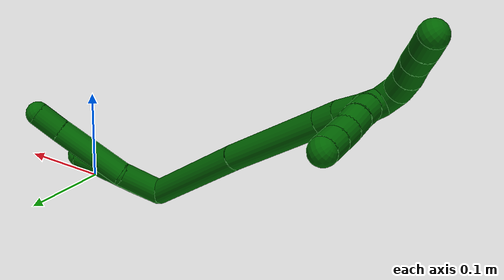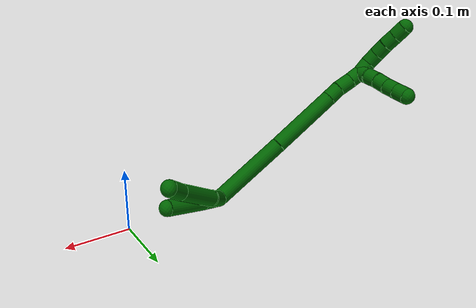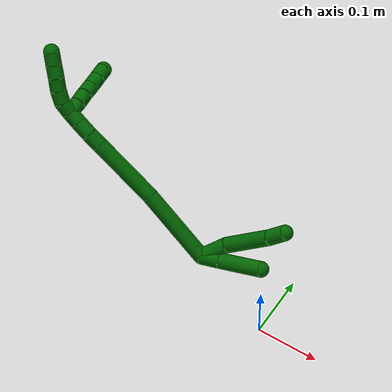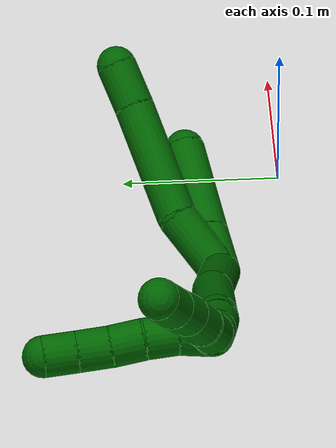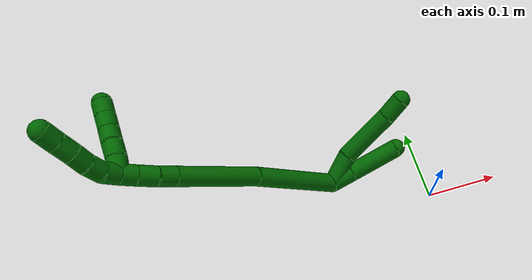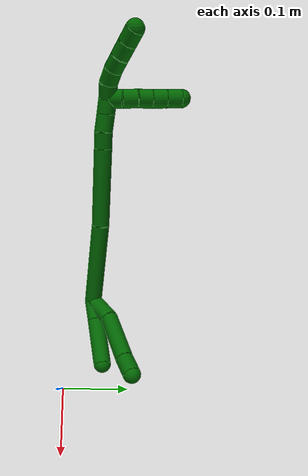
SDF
<sdf version="1.7">
 <world name="default">
  <model name="6">
   <static>0</static>
   <link name="6">
    <collision name="collision-cylinder-e_1_2_8">
     <pose>0.013104 0.017549 -0.003559 -1.77091 0.631764 -0.760616</pose>
     <geometry><cylinder><radius>0.0125</radius><length>0.044377</length></cylinder></geometry>
     <surface>
      <friction><ode><mu>1.16</mu><mu2>1.16</mu2><slip1>0</slip1><slip2>0</slip2></ode></friction>
      <contact><ode><kp>1e+06</kp><kd>1</kd><max_vel>0</max_vel><min_depth>0.001</min_depth></ode></contact>
     </surface>
    </collision>
    <visual name="visual-cylinder-e_1_2_8">
     <pose>0.013104 0.017549 -0.003559 -1.77091 0.631764 -0.760616</pose>
     <geometry><cylinder><radius>0.0125</radius><length>0.044377</length></cylinder></geometry>
     <material><ambient>0 0.392157 0.003922 1</ambient></material>
    </visual>
    <collision name="collision-cylinder-e_2_8_9">
     <pose>0.056456 0.056657 -0.015764 -1.95217 0.915916 -1.25948</pose>
     <geometry><cylinder><radius>0.0125</radius><length>0.076277</length></cylinder></geometry>
     <surface>
      <friction><ode><mu>1.16</mu><mu2>1.16</mu2><slip1>0</slip1><slip2>0</slip2></ode></friction>
      <contact><ode><kp>1e+06</kp><kd>1</kd><max_vel>0</max_vel><min_depth>0.001</min_depth></ode></contact>
     </surface>
    </collision>
    <visual name="visual-cylinder-e_2_8_9">
     <pose>0.056456 0.056657 -0.015764 -1.95217 0.915916 -1.25948</pose>
     <geometry><cylinder><radius>0.0125</radius><length>0.076277</length></cylinder></geometry>
     <material><ambient>0 0.392157 0.003922 1</ambient></material>
    </visual>
    <collision name="collision-cylinder-e_3_9_6">
     <pose>0.098122 0.087178 -0.026563 -1.80659 0.891712 -1.09021</pose>
     <geometry><cylinder><radius>0.0125</radius><length>0.029346</length></cylinder></geometry>
     <surface>
      <friction><ode><mu>1.16</mu><mu2>1.16</mu2><slip1>0</slip1><slip2>0</slip2></ode></friction>
      <contact><ode><kp>1e+06</kp><kd>1</kd><max_vel>0</max_vel><min_depth>0.001</min_depth></ode></contact>
     </surface>
    </collision>
    <visual name="visual-cylinder-e_3_9_6">
     <pose>0.098122 0.087178 -0.026563 -1.80659 0.891712 -1.09021</pose>
     <geometry><cylinder><radius>0.0125</radius><length>0.029346</length></cylinder></geometry>
     <material><ambient>0 0.392157 0.003922 1</ambient></material>
    </visual>
    <collision name="collision-cylinder-e_1_2_10">
     <pose>0.011396 0.005992 -0.009108 -2.55972 0.807518 -1.91897</pose>
     <geometry><cylinder><radius>0.0125</radius><length>0.031542</length></cylinder></geometry>
     <surface>
      <friction><ode><mu>1.16</mu><mu2>1.16</mu2><slip1>0</slip1><slip2>0</slip2></ode></friction>
      <contact><ode><kp>1e+06</kp><kd>1</kd><max_vel>0</max_vel><min_depth>0.001</min_depth></ode></contact>
     </surface>
    </collision>
    <visual name="visual-cylinder-e_1_2_10">
     <pose>0.011396 0.005992 -0.009108 -2.55972 0.807518 -1.91897</pose>
     <geometry><cylinder><radius>0.0125</radius><length>0.031542</length></cylinder></geometry>
     <material><ambient>0 0.392157 0.003922 1</ambient></material>
    </visual>
    <collision name="collision-cylinder-e_2_10_5">
     <pose>0.048347 0.025124 -0.036815 -2.5265 0.842926 -1.90882</pose>
     <geometry><cylinder><radius>0.0125</radius><length>0.068458</length></cylinder></geometry>
     <surface>
      <friction><ode><mu>1.16</mu><mu2>1.16</mu2><slip1>0</slip1><slip2>0</slip2></ode></friction>
      <contact><ode><kp>1e+06</kp><kd>1</kd><max_vel>0</max_vel><min_depth>0.001</min_depth></ode></contact>
     </surface>
    </collision>
    <visual name="visual-cylinder-e_2_10_5">
     <pose>0.048347 0.025124 -0.036815 -2.5265 0.842926 -1.90882</pose>
     <geometry><cylinder><radius>0.0125</radius><length>0.068458</length></cylinder></geometry>
     <material><ambient>0 0.392157 0.003922 1</ambient></material>
    </visual>
    <collision name="collision-cylinder-e_1_2_11">
     <pose>-0.011601 0.005778 0.060497 -0.095222 -0.188631 0.009014</pose>
     <geometry><cylinder><radius>0.0125</radius><length>0.12374</length></cylinder></geometry>
     <surface>
      <friction><ode><mu>1.16</mu><mu2>1.16</mu2><slip1>0</slip1><slip2>0</slip2></ode></friction>
      <contact><ode><kp>1e+06</kp><kd>1</kd><max_vel>0</max_vel><min_depth>0.001</min_depth></ode></contact>
     </surface>
    </collision>
    <visual name="visual-cylinder-e_1_2_11">
     <pose>-0.011601 0.005778 0.060497 -0.095222 -0.188631 0.009014</pose>
     <geometry><cylinder><radius>0.0125</radius><length>0.12374</length></cylinder></geometry>
     <material><ambient>0 0.392157 0.003922 1</ambient></material>
    </visual>
    <collision name="collision-cylinder-e_2_11_12">
     <pose>-0.034532 0.012854 0.174828 -0.024104 -0.207367 0.002508</pose>
     <geometry><cylinder><radius>0.0125</radius><length>0.110057</length></cylinder></geometry>
     <surface>
      <friction><ode><mu>1.16</mu><mu2>1.16</mu2><slip1>0</slip1><slip2>0</slip2></ode></friction>
      <contact><ode><kp>1e+06</kp><kd>1</kd><max_vel>0</max_vel><min_depth>0.001</min_depth></ode></contact>
     </surface>
    </collision>
    <visual name="visual-cylinder-e_2_11_12">
     <pose>-0.034532 0.012854 0.174828 -0.024104 -0.207367 0.002508</pose>
     <geometry><cylinder><radius>0.0125</radius><length>0.110057</length></cylinder></geometry>
     <material><ambient>0 0.392157 0.003922 1</ambient></material>
    </visual>
    <collision name="collision-cylinder-e_3_12_13">
     <pose>-0.048047 0.014369 0.239556 -0.019905 -0.19793 0.001976</pose>
     <geometry><cylinder><radius>0.0125</radius><length>0.022228</length></cylinder></geometry>
     <surface>
      <friction><ode><mu>1.16</mu><mu2>1.16</mu2><slip1>0</slip1><slip2>0</slip2></ode></friction>
      <contact><ode><kp>1e+06</kp><kd>1</kd><max_vel>0</max_vel><min_depth>0.001</min_depth></ode></contact>
     </surface>
    </collision>
    <visual name="visual-cylinder-e_3_12_13">
     <pose>-0.048047 0.014369 0.239556 -0.019905 -0.19793 0.001976</pose>
     <geometry><cylinder><radius>0.0125</radius><length>0.022228</length></cylinder></geometry>
     <material><ambient>0 0.392157 0.003922 1</ambient></material>
    </visual>
    <collision name="collision-cylinder-e_4_13_14">
     <pose>-0.054085 0.015618 0.261729 -0.091251 -0.327852 0.015104</pose>
     <geometry><cylinder><radius>0.0125</radius><length>0.023924</length></cylinder></geometry>
     <surface>
      <friction><ode><mu>1.16</mu><mu2>1.16</mu2><slip1>0</slip1><slip2>0</slip2></ode></friction>
      <contact><ode><kp>1e+06</kp><kd>1</kd><max_vel>0</max_vel><min_depth>0.001</min_depth></ode></contact>
     </surface>
    </collision>
    <visual name="visual-cylinder-e_4_13_14">
     <pose>-0.054085 0.015618 0.261729 -0.091251 -0.327852 0.015104</pose>
     <geometry><cylinder><radius>0.0125</radius><length>0.023924</length></cylinder></geometry>
     <material><ambient>0 0.392157 0.003922 1</ambient></material>
    </visual>
    <collision name="collision-cylinder-e_5_14_1">
     <pose>-0.060628 0.017642 0.282613 -0.102909 -0.271804 0.014085</pose>
     <geometry><cylinder><radius>0.0125</radius><length>0.020052</length></cylinder></geometry>
     <surface>
      <friction><ode><mu>1.16</mu><mu2>1.16</mu2><slip1>0</slip1><slip2>0</slip2></ode></friction>
      <contact><ode><kp>1e+06</kp><kd>1</kd><max_vel>0</max_vel><min_depth>0.001</min_depth></ode></contact>
     </surface>
    </collision>
    <visual name="visual-cylinder-e_5_14_1">
     <pose>-0.060628 0.017642 0.282613 -0.102909 -0.271804 0.014085</pose>
     <geometry><cylinder><radius>0.0125</radius><length>0.020052</length></cylinder></geometry>
     <material><ambient>0 0.392157 0.003922 1</ambient></material>
    </visual>
    <collision name="collision-cylinder-e_1_1_15">
     <pose>-0.063502 0.019624 0.302169 -0.099164 -0.018196 0.000903</pose>
     <geometry><cylinder><radius>0.0125</radius><length>0.02</length></cylinder></geometry>
     <surface>
      <friction><ode><mu>1.16</mu><mu2>1.16</mu2><slip1>0</slip1><slip2>0</slip2></ode></friction>
      <contact><ode><kp>1e+06</kp><kd>1</kd><max_vel>0</max_vel><min_depth>0.001</min_depth></ode></contact>
     </surface>
    </collision>
    <visual name="visual-cylinder-e_1_1_15">
     <pose>-0.063502 0.019624 0.302169 -0.099164 -0.018196 0.000903</pose>
     <geometry><cylinder><radius>0.0125</radius><length>0.02</length></cylinder></geometry>
     <material><ambient>0 0.392157 0.003922 1</ambient></material>
    </visual>
    <collision name="collision-cylinder-e_2_15_16">
     <pose>-0.063196 0.024739 0.321215 -0.425734 0.048766 -0.010542</pose>
     <geometry><cylinder><radius>0.0125</radius><length>0.02</length></cylinder></geometry>
     <surface>
      <friction><ode><mu>1.16</mu><mu2>1.16</mu2><slip1>0</slip1><slip2>0</slip2></ode></friction>
      <contact><ode><kp>1e+06</kp><kd>1</kd><max_vel>0</max_vel><min_depth>0.001</min_depth></ode></contact>
     </surface>
    </collision>
    <visual name="visual-cylinder-e_2_15_16">
     <pose>-0.063196 0.024739 0.321215 -0.425734 0.048766 -0.010542</pose>
     <geometry><cylinder><radius>0.0125</radius><length>0.02</length></cylinder></geometry>
     <material><ambient>0 0.392157 0.003922 1</ambient></material>
    </visual>
    <collision name="collision-cylinder-e_3_16_17">
     <pose>-0.061683 0.034246 0.338677 -0.571786 0.102751 -0.030227</pose>
     <geometry><cylinder><radius>0.0125</radius><length>0.02</length></cylinder></geometry>
     <surface>
      <friction><ode><mu>1.16</mu><mu2>1.16</mu2><slip1>0</slip1><slip2>0</slip2></ode></friction>
      <contact><ode><kp>1e+06</kp><kd>1</kd><max_vel>0</max_vel><min_depth>0.001</min_depth></ode></contact>
     </surface>
    </collision>
    <visual name="visual-cylinder-e_3_16_17">
     <pose>-0.061683 0.034246 0.338677 -0.571786 0.102751 -0.030227</pose>
     <geometry><cylinder><radius>0.0125</radius><length>0.02</length></cylinder></geometry>
     <material><ambient>0 0.392157 0.003922 1</ambient></material>
    </visual>
    <collision name="collision-cylinder-e_4_17_18">
     <pose>-0.060515 0.044984 0.355486 -0.565184 0.014279 -0.004146</pose>
     <geometry><cylinder><radius>0.0125</radius><length>0.02</length></cylinder></geometry>
     <surface>
      <friction><ode><mu>1.16</mu><mu2>1.16</mu2><slip1>0</slip1><slip2>0</slip2></ode></friction>
      <contact><ode><kp>1e+06</kp><kd>1</kd><max_vel>0</max_vel><min_depth>0.001</min_depth></ode></contact>
     </surface>
    </collision>
    <visual name="visual-cylinder-e_4_17_18">
     <pose>-0.060515 0.044984 0.355486 -0.565184 0.014279 -0.004146</pose>
     <geometry><cylinder><radius>0.0125</radius><length>0.02</length></cylinder></geometry>
     <material><ambient>0 0.392157 0.003922 1</ambient></material>
    </visual>
    <collision name="collision-cylinder-e_5_18_4">
     <pose>-0.059796 0.055756 0.372316 -0.573469 0.057583 -0.016983</pose>
     <geometry><cylinder><radius>0.0125</radius><length>0.02</length></cylinder></geometry>
     <surface>
      <friction><ode><mu>1.16</mu><mu2>1.16</mu2><slip1>0</slip1><slip2>0</slip2></ode></friction>
      <contact><ode><kp>1e+06</kp><kd>1</kd><max_vel>0</max_vel><min_depth>0.001</min_depth></ode></contact>
     </surface>
    </collision>
    <visual name="visual-cylinder-e_5_18_4">
     <pose>-0.059796 0.055756 0.372316 -0.573469 0.057583 -0.016983</pose>
     <geometry><cylinder><radius>0.0125</radius><length>0.02</length></cylinder></geometry>
     <material><ambient>0 0.392157 0.003922 1</ambient></material>
    </visual>
    <collision name="collision-cylinder-e_1_1_19">
     <pose>-0.065701 0.028329 0.291634 -1.63122 -0.240384 0.255207</pose>
     <geometry><cylinder><radius>0.0125</radius><length>0.02</length></cylinder></geometry>
     <surface>
      <friction><ode><mu>1.16</mu><mu2>1.16</mu2><slip1>0</slip1><slip2>0</slip2></ode></friction>
      <contact><ode><kp>1e+06</kp><kd>1</kd><max_vel>0</max_vel><min_depth>0.001</min_depth></ode></contact>
     </surface>
    </collision>
    <visual name="visual-cylinder-e_1_1_19">
     <pose>-0.065701 0.028329 0.291634 -1.63122 -0.240384 0.255207</pose>
     <geometry><cylinder><radius>0.0125</radius><length>0.02</length></cylinder></geometry>
     <material><ambient>0 0.392157 0.003922 1</ambient></material>
    </visual>
    <collision name="collision-cylinder-e_2_19_20">
     <pose>-0.072197 0.047127 0.290623 -1.61734 -0.424172 0.443745</pose>
     <geometry><cylinder><radius>0.0125</radius><length>0.02</length></cylinder></geometry>
     <surface>
      <friction><ode><mu>1.16</mu><mu2>1.16</mu2><slip1>0</slip1><slip2>0</slip2></ode></friction>
      <contact><ode><kp>1e+06</kp><kd>1</kd><max_vel>0</max_vel><min_depth>0.001</min_depth></ode></contact>
     </surface>
    </collision>
    <visual name="visual-cylinder-e_2_19_20">
     <pose>-0.072197 0.047127 0.290623 -1.61734 -0.424172 0.443745</pose>
     <geometry><cylinder><radius>0.0125</radius><length>0.02</length></cylinder></geometry>
     <material><ambient>0 0.392157 0.003922 1</ambient></material>
    </visual>
    <collision name="collision-cylinder-e_3_20_21">
     <pose>-0.081055 0.064955 0.289016 -1.70557 -0.494136 0.562172</pose>
     <geometry><cylinder><radius>0.0125</radius><length>0.02</length></cylinder></geometry>
     <surface>
      <friction><ode><mu>1.16</mu><mu2>1.16</mu2><slip1>0</slip1><slip2>0</slip2></ode></friction>
      <contact><ode><kp>1e+06</kp><kd>1</kd><max_vel>0</max_vel><min_depth>0.001</min_depth></ode></contact>
     </surface>
    </collision>
    <visual name="visual-cylinder-e_3_20_21">
     <pose>-0.081055 0.064955 0.289016 -1.70557 -0.494136 0.562172</pose>
     <geometry><cylinder><radius>0.0125</radius><length>0.02</length></cylinder></geometry>
     <material><ambient>0 0.392157 0.003922 1</ambient></material>
    </visual>
    <collision name="collision-cylinder-e_4_21_22">
     <pose>-0.089948 0.082756 0.287201 -1.64032 -0.42791 0.457712</pose>
     <geometry><cylinder><radius>0.0125</radius><length>0.02</length></cylinder></geometry>
     <surface>
      <friction><ode><mu>1.16</mu><mu2>1.16</mu2><slip1>0</slip1><slip2>0</slip2></ode></friction>
      <contact><ode><kp>1e+06</kp><kd>1</kd><max_vel>0</max_vel><min_depth>0.001</min_depth></ode></contact>
     </surface>
    </collision>
    <visual name="visual-cylinder-e_4_21_22">
     <pose>-0.089948 0.082756 0.287201 -1.64032 -0.42791 0.457712</pose>
     <geometry><cylinder><radius>0.0125</radius><length>0.02</length></cylinder></geometry>
     <material><ambient>0 0.392157 0.003922 1</ambient></material>
    </visual>
    <collision name="collision-cylinder-e_5_22_3">
     <pose>-0.098168 0.100946 0.28597 -1.63651 -0.419222 0.446806</pose>
     <geometry><cylinder><radius>0.0125</radius><length>0.02</length></cylinder></geometry>
     <surface>
      <friction><ode><mu>1.16</mu><mu2>1.16</mu2><slip1>0</slip1><slip2>0</slip2></ode></friction>
      <contact><ode><kp>1e+06</kp><kd>1</kd><max_vel>0</max_vel><min_depth>0.001</min_depth></ode></contact>
     </surface>
    </collision>
    <visual name="visual-cylinder-e_5_22_3">
     <pose>-0.098168 0.100946 0.28597 -1.63651 -0.419222 0.446806</pose>
     <geometry><cylinder><radius>0.0125</radius><length>0.02</length></cylinder></geometry>
     <material><ambient>0 0.392157 0.003922 1</ambient></material>
    </visual>
    <collision name="collision-sphere-3">
     <pose>-0.102239 0.110061 0.28537 0 -0 0</pose>
     <geometry><sphere><radius>0.0125</radius></sphere></geometry>
     <surface>
      <friction><ode><mu>1.16</mu><mu2>1.16</mu2><slip1>0</slip1><slip2>0</slip2></ode></friction>
      <contact><ode><kp>1e+06</kp><kd>1</kd><max_vel>0</max_vel><min_depth>0.001</min_depth></ode></contact>
     </surface>
    </collision>
    <visual name="visual-sphere-3">
     <pose>-0.102239 0.110061 0.28537 0 -0 0</pose>
     <geometry><sphere><radius>0.0125</radius></sphere></geometry>
     <material><ambient>0 0.392157 0.003922 1</ambient></material>
    </visual>
    <collision name="collision-sphere-22">
     <pose>-0.094098 0.091832 0.286569 0 -0 0</pose>
     <geometry><sphere><radius>0.0125</radius></sphere></geometry>
     <surface>
      <friction><ode><mu>1.16</mu><mu2>1.16</mu2><slip1>0</slip1><slip2>0</slip2></ode></friction>
      <contact><ode><kp>1e+06</kp><kd>1</kd><max_vel>0</max_vel><min_depth>0.001</min_depth></ode></contact>
     </surface>
    </collision>
    <visual name="visual-sphere-22">
     <pose>-0.094098 0.091832 0.286569 0 -0 0</pose>
     <geometry><sphere><radius>0.0125</radius></sphere></geometry>
     <material><ambient>0 0.392157 0.003922 1</ambient></material>
    </visual>
    <collision name="collision-sphere-21">
     <pose>-0.085798 0.073679 0.287833 0 -0 0</pose>
     <geometry><sphere><radius>0.0125</radius></sphere></geometry>
     <surface>
      <friction><ode><mu>1.16</mu><mu2>1.16</mu2><slip1>0</slip1><slip2>0</slip2></ode></friction>
      <contact><ode><kp>1e+06</kp><kd>1</kd><max_vel>0</max_vel><min_depth>0.001</min_depth></ode></contact>
     </surface>
    </collision>
    <visual name="visual-sphere-21">
     <pose>-0.085798 0.073679 0.287833 0 -0 0</pose>
     <geometry><sphere><radius>0.0125</radius></sphere></geometry>
     <material><ambient>0 0.392157 0.003922 1</ambient></material>
    </visual>
    <collision name="collision-sphere-20">
     <pose>-0.076313 0.056231 0.290199 0 -0 0</pose>
     <geometry><sphere><radius>0.0125</radius></sphere></geometry>
     <surface>
      <friction><ode><mu>1.16</mu><mu2>1.16</mu2><slip1>0</slip1><slip2>0</slip2></ode></friction>
      <contact><ode><kp>1e+06</kp><kd>1</kd><max_vel>0</max_vel><min_depth>0.001</min_depth></ode></contact>
     </surface>
    </collision>
    <visual name="visual-sphere-20">
     <pose>-0.076313 0.056231 0.290199 0 -0 0</pose>
     <geometry><sphere><radius>0.0125</radius></sphere></geometry>
     <material><ambient>0 0.392157 0.003922 1</ambient></material>
    </visual>
    <collision name="collision-sphere-19">
     <pose>-0.068081 0.038024 0.291047 0 -0 0</pose>
     <geometry><sphere><radius>0.0125</radius></sphere></geometry>
     <surface>
      <friction><ode><mu>1.16</mu><mu2>1.16</mu2><slip1>0</slip1><slip2>0</slip2></ode></friction>
      <contact><ode><kp>1e+06</kp><kd>1</kd><max_vel>0</max_vel><min_depth>0.001</min_depth></ode></contact>
     </surface>
    </collision>
    <visual name="visual-sphere-19">
     <pose>-0.068081 0.038024 0.291047 0 -0 0</pose>
     <geometry><sphere><radius>0.0125</radius></sphere></geometry>
     <material><ambient>0 0.392157 0.003922 1</ambient></material>
    </visual>
    <collision name="collision-sphere-5">
     <pose>0.073902 0.038264 -0.055413 0 -0 0</pose>
     <geometry><sphere><radius>0.0125</radius></sphere></geometry>
     <surface>
      <friction><ode><mu>1.16</mu><mu2>1.16</mu2><slip1>0</slip1><slip2>0</slip2></ode></friction>
      <contact><ode><kp>1e+06</kp><kd>1</kd><max_vel>0</max_vel><min_depth>0.001</min_depth></ode></contact>
     </surface>
    </collision>
    <visual name="visual-sphere-5">
     <pose>0.073902 0.038264 -0.055413 0 -0 0</pose>
     <geometry><sphere><radius>0.0125</radius></sphere></geometry>
     <material><ambient>0 0.392157 0.003922 1</ambient></material>
    </visual>
    <collision name="collision-sphere-10">
     <pose>0.022791 0.011984 -0.018216 0 -0 0</pose>
     <geometry><sphere><radius>0.0125</radius></sphere></geometry>
     <surface>
      <friction><ode><mu>1.16</mu><mu2>1.16</mu2><slip1>0</slip1><slip2>0</slip2></ode></friction>
      <contact><ode><kp>1e+06</kp><kd>1</kd><max_vel>0</max_vel><min_depth>0.001</min_depth></ode></contact>
     </surface>
    </collision>
    <visual name="visual-sphere-10">
     <pose>0.022791 0.011984 -0.018216 0 -0 0</pose>
     <geometry><sphere><radius>0.0125</radius></sphere></geometry>
     <material><ambient>0 0.392157 0.003922 1</ambient></material>
    </visual>
    <collision name="collision-sphere-6">
     <pose>0.10954 0.096139 -0.028716 0 -0 0</pose>
     <geometry><sphere><radius>0.0125</radius></sphere></geometry>
     <surface>
      <friction><ode><mu>1.16</mu><mu2>1.16</mu2><slip1>0</slip1><slip2>0</slip2></ode></friction>
      <contact><ode><kp>1e+06</kp><kd>1</kd><max_vel>0</max_vel><min_depth>0.001</min_depth></ode></contact>
     </surface>
    </collision>
    <visual name="visual-sphere-6">
     <pose>0.10954 0.096139 -0.028716 0 -0 0</pose>
     <geometry><sphere><radius>0.0125</radius></sphere></geometry>
     <material><ambient>0 0.392157 0.003922 1</ambient></material>
    </visual>
    <collision name="collision-sphere-9">
     <pose>0.086705 0.078217 -0.02441 0 -0 0</pose>
     <geometry><sphere><radius>0.0125</radius></sphere></geometry>
     <surface>
      <friction><ode><mu>1.16</mu><mu2>1.16</mu2><slip1>0</slip1><slip2>0</slip2></ode></friction>
      <contact><ode><kp>1e+06</kp><kd>1</kd><max_vel>0</max_vel><min_depth>0.001</min_depth></ode></contact>
     </surface>
    </collision>
    <visual name="visual-sphere-9">
     <pose>0.086705 0.078217 -0.02441 0 -0 0</pose>
     <geometry><sphere><radius>0.0125</radius></sphere></geometry>
     <material><ambient>0 0.392157 0.003922 1</ambient></material>
    </visual>
    <collision name="collision-sphere-2">
     <geometry><sphere><radius>0.0125</radius></sphere></geometry>
     <surface>
      <friction><ode><mu>1.16</mu><mu2>1.16</mu2><slip1>0</slip1><slip2>0</slip2></ode></friction>
      <contact><ode><kp>1e+06</kp><kd>1</kd><max_vel>0</max_vel><min_depth>0.001</min_depth></ode></contact>
     </surface>
    </collision>
    <visual name="visual-sphere-2">
     <geometry><sphere><radius>0.0125</radius></sphere></geometry>
     <material><ambient>0 0.392157 0.003922 1</ambient></material>
    </visual>
    <collision name="collision-sphere-8">
     <pose>0.026208 0.035097 -0.007119 0 -0 0</pose>
     <geometry><sphere><radius>0.0125</radius></sphere></geometry>
     <surface>
      <friction><ode><mu>1.16</mu><mu2>1.16</mu2><slip1>0</slip1><slip2>0</slip2></ode></friction>
      <contact><ode><kp>1e+06</kp><kd>1</kd><max_vel>0</max_vel><min_depth>0.001</min_depth></ode></contact>
     </surface>
    </collision>
    <visual name="visual-sphere-8">
     <pose>0.026208 0.035097 -0.007119 0 -0 0</pose>
     <geometry><sphere><radius>0.0125</radius></sphere></geometry>
     <material><ambient>0 0.392157 0.003922 1</ambient></material>
    </visual>
    <collision name="collision-sphere-11">
     <pose>-0.023203 0.011556 0.120994 0 -0 0</pose>
     <geometry><sphere><radius>0.0125</radius></sphere></geometry>
     <surface>
      <friction><ode><mu>1.16</mu><mu2>1.16</mu2><slip1>0</slip1><slip2>0</slip2></ode></friction>
      <contact><ode><kp>1e+06</kp><kd>1</kd><max_vel>0</max_vel><min_depth>0.001</min_depth></ode></contact>
     </surface>
    </collision>
    <visual name="visual-sphere-11">
     <pose>-0.023203 0.011556 0.120994 0 -0 0</pose>
     <geometry><sphere><radius>0.0125</radius></sphere></geometry>
     <material><ambient>0 0.392157 0.003922 1</ambient></material>
    </visual>
    <collision name="collision-sphere-12">
     <pose>-0.045862 0.014152 0.228661 0 -0 0</pose>
     <geometry><sphere><radius>0.0125</radius></sphere></geometry>
     <surface>
      <friction><ode><mu>1.16</mu><mu2>1.16</mu2><slip1>0</slip1><slip2>0</slip2></ode></friction>
      <contact><ode><kp>1e+06</kp><kd>1</kd><max_vel>0</max_vel><min_depth>0.001</min_depth></ode></contact>
     </surface>
    </collision>
    <visual name="visual-sphere-12">
     <pose>-0.045862 0.014152 0.228661 0 -0 0</pose>
     <geometry><sphere><radius>0.0125</radius></sphere></geometry>
     <material><ambient>0 0.392157 0.003922 1</ambient></material>
    </visual>
    <collision name="collision-sphere-13">
     <pose>-0.050233 0.014586 0.250451 0 -0 0</pose>
     <geometry><sphere><radius>0.0125</radius></sphere></geometry>
     <surface>
      <friction><ode><mu>1.16</mu><mu2>1.16</mu2><slip1>0</slip1><slip2>0</slip2></ode></friction>
      <contact><ode><kp>1e+06</kp><kd>1</kd><max_vel>0</max_vel><min_depth>0.001</min_depth></ode></contact>
     </surface>
    </collision>
    <visual name="visual-sphere-13">
     <pose>-0.050233 0.014586 0.250451 0 -0 0</pose>
     <geometry><sphere><radius>0.0125</radius></sphere></geometry>
     <material><ambient>0 0.392157 0.003922 1</ambient></material>
    </visual>
    <collision name="collision-sphere-14">
     <pose>-0.057937 0.01665 0.273006 0 -0 0</pose>
     <geometry><sphere><radius>0.0125</radius></sphere></geometry>
     <surface>
      <friction><ode><mu>1.16</mu><mu2>1.16</mu2><slip1>0</slip1><slip2>0</slip2></ode></friction>
      <contact><ode><kp>1e+06</kp><kd>1</kd><max_vel>0</max_vel><min_depth>0.001</min_depth></ode></contact>
     </surface>
    </collision>
    <visual name="visual-sphere-14">
     <pose>-0.057937 0.01665 0.273006 0 -0 0</pose>
     <geometry><sphere><radius>0.0125</radius></sphere></geometry>
     <material><ambient>0 0.392157 0.003922 1</ambient></material>
    </visual>
    <collision name="collision-sphere-1">
     <pose>-0.06332 0.018634 0.29222 0 -0 0</pose>
     <geometry><sphere><radius>0.0125</radius></sphere></geometry>
     <surface>
      <friction><ode><mu>1.16</mu><mu2>1.16</mu2><slip1>0</slip1><slip2>0</slip2></ode></friction>
      <contact><ode><kp>1e+06</kp><kd>1</kd><max_vel>0</max_vel><min_depth>0.001</min_depth></ode></contact>
     </surface>
    </collision>
    <visual name="visual-sphere-1">
     <pose>-0.06332 0.018634 0.29222 0 -0 0</pose>
     <geometry><sphere><radius>0.0125</radius></sphere></geometry>
     <material><ambient>0 0.392157 0.003922 1</ambient></material>
    </visual>
    <collision name="collision-sphere-18">
     <pose>-0.060372 0.05034 0.36393 0 -0 0</pose>
     <geometry><sphere><radius>0.0125</radius></sphere></geometry>
     <surface>
      <friction><ode><mu>1.16</mu><mu2>1.16</mu2><slip1>0</slip1><slip2>0</slip2></ode></friction>
      <contact><ode><kp>1e+06</kp><kd>1</kd><max_vel>0</max_vel><min_depth>0.001</min_depth></ode></contact>
     </surface>
    </collision>
    <visual name="visual-sphere-18">
     <pose>-0.060372 0.05034 0.36393 0 -0 0</pose>
     <geometry><sphere><radius>0.0125</radius></sphere></geometry>
     <material><ambient>0 0.392157 0.003922 1</ambient></material>
    </visual>
    <collision name="collision-sphere-15">
     <pose>-0.063684 0.020614 0.312119 0 -0 0</pose>
     <geometry><sphere><radius>0.0125</radius></sphere></geometry>
     <surface>
      <friction><ode><mu>1.16</mu><mu2>1.16</mu2><slip1>0</slip1><slip2>0</slip2></ode></friction>
      <contact><ode><kp>1e+06</kp><kd>1</kd><max_vel>0</max_vel><min_depth>0.001</min_depth></ode></contact>
     </surface>
    </collision>
    <visual name="visual-sphere-15">
     <pose>-0.063684 0.020614 0.312119 0 -0 0</pose>
     <geometry><sphere><radius>0.0125</radius></sphere></geometry>
     <material><ambient>0 0.392157 0.003922 1</ambient></material>
    </visual>
    <collision name="collision-sphere-16">
     <pose>-0.062709 0.028864 0.330312 0 -0 0</pose>
     <geometry><sphere><radius>0.0125</radius></sphere></geometry>
     <surface>
      <friction><ode><mu>1.16</mu><mu2>1.16</mu2><slip1>0</slip1><slip2>0</slip2></ode></friction>
      <contact><ode><kp>1e+06</kp><kd>1</kd><max_vel>0</max_vel><min_depth>0.001</min_depth></ode></contact>
     </surface>
    </collision>
    <visual name="visual-sphere-16">
     <pose>-0.062709 0.028864 0.330312 0 -0 0</pose>
     <geometry><sphere><radius>0.0125</radius></sphere></geometry>
     <material><ambient>0 0.392157 0.003922 1</ambient></material>
    </visual>
    <collision name="collision-sphere-17">
     <pose>-0.060658 0.039629 0.347042 0 -0 0</pose>
     <geometry><sphere><radius>0.0125</radius></sphere></geometry>
     <surface>
      <friction><ode><mu>1.16</mu><mu2>1.16</mu2><slip1>0</slip1><slip2>0</slip2></ode></friction>
      <contact><ode><kp>1e+06</kp><kd>1</kd><max_vel>0</max_vel><min_depth>0.001</min_depth></ode></contact>
     </surface>
    </collision>
    <visual name="visual-sphere-17">
     <pose>-0.060658 0.039629 0.347042 0 -0 0</pose>
     <geometry><sphere><radius>0.0125</radius></sphere></geometry>
     <material><ambient>0 0.392157 0.003922 1</ambient></material>
    </visual>
    <collision name="collision-sphere-4">
     <pose>-0.059221 0.061173 0.380702 0 -0 0</pose>
     <geometry><sphere><radius>0.0125</radius></sphere></geometry>
     <surface>
      <friction><ode><mu>1.16</mu><mu2>1.16</mu2><slip1>0</slip1><slip2>0</slip2></ode></friction>
      <contact><ode><kp>1e+06</kp><kd>1</kd><max_vel>0</max_vel><min_depth>0.001</min_depth></ode></contact>
     </surface>
    </collision>
    <visual name="visual-sphere-4">
     <pose>-0.059221 0.061173 0.380702 0 -0 0</pose>
     <geometry><sphere><radius>0.0125</radius></sphere></geometry>
     <material><ambient>0 0.392157 0.003922 1</ambient></material>
    </visual>
    <inertial>
     <pose>-0.01559 0.030418 0.135625 0 -0 0</pose>
     <mass>0.75</mass>
     <inertia>
      <ixx>0.000258</ixx>
      <ixy>0</ixy>
      <ixz>0</ixz>
      <iyy>0.000316</iyy>
      <iyz>0</iyz>
      <izz>-5.6e-05</izz>
     </inertia>
    </inertial>
   </link>
   <pose>-0.133013 0.045918 0.036115 0.359269 -0.739879 -0.432843</pose>
  </model>
 </world>
</sdf>
